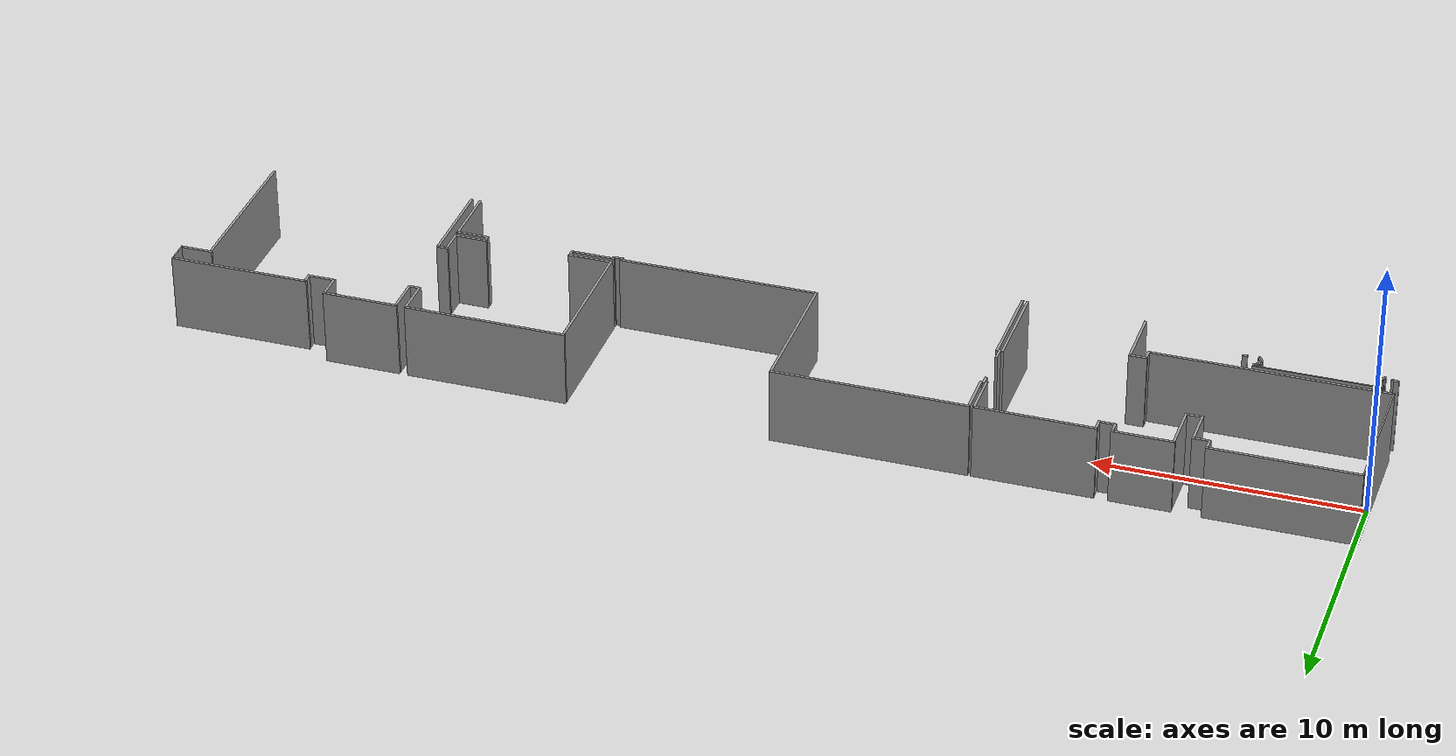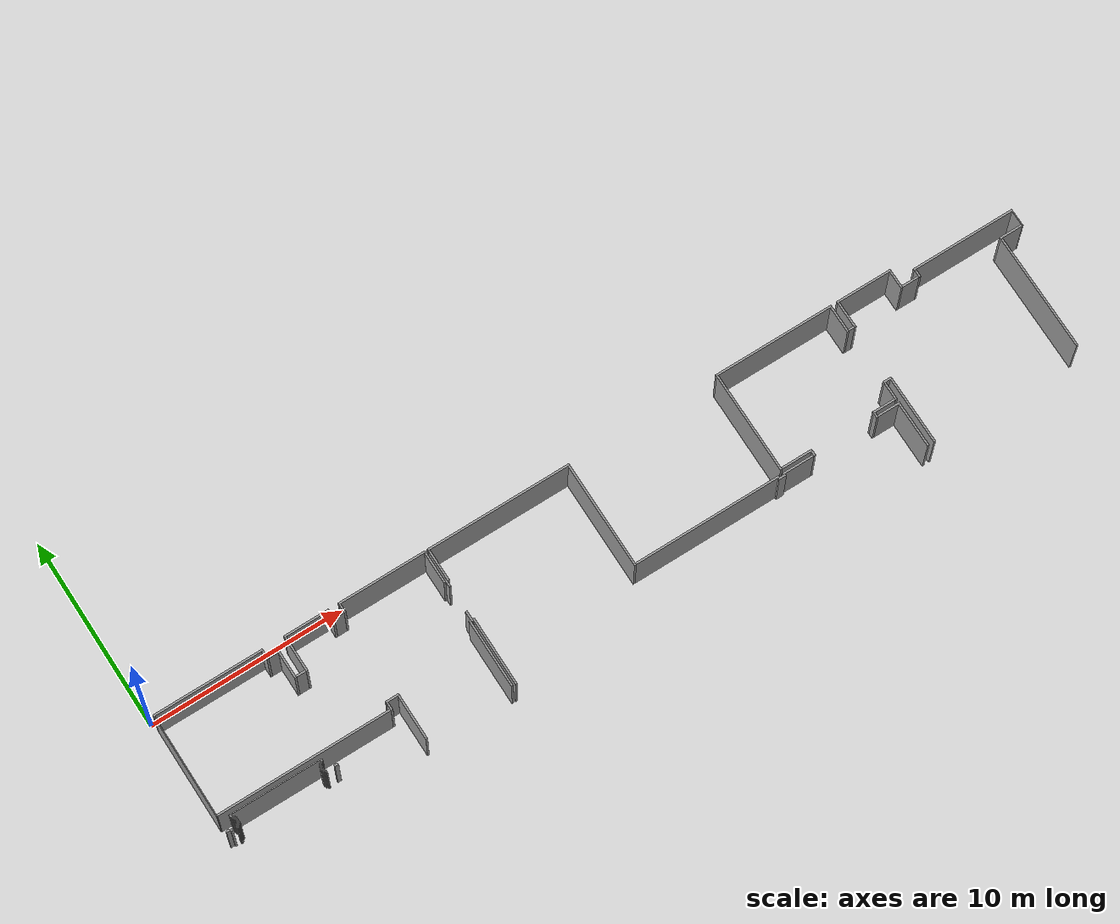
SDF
<sdf version="1.4">
 <model name="RussianRestaurant">
  <static>1</static>
  <link name="Wall_0">
   <collision name="Wall_0_Collision">
    <geometry><box><size>5.70000 0.10000 3.00000</size></box></geometry>
    <pose>3.05000 -0.05000 0 0 0 0.00000</pose>
   </collision>
   <visual name="Wall_0_Visual">
    <geometry><box><size>5.70000 0.10000 3.00000</size></box></geometry>
    <material>
     <script><uri>file://media/materials/scripts/gazebo.material</uri><name>Gazebo/Grey</name></script>
    </material>
    <pose>3.05000 -0.05000 0 0 0 0.00000</pose>
   </visual>
  </link>
  <link name="Wall_1">
   <collision name="Wall_1_Collision">
    <geometry><box><size>2.35000 0.10000 3.00000</size></box></geometry>
    <pose>8.17500 -0.05000 0 0 0 0.00000</pose>
   </collision>
   <visual name="Wall_1_Visual">
    <geometry><box><size>2.35000 0.10000 3.00000</size></box></geometry>
    <material>
     <script><uri>file://media/materials/scripts/gazebo.material</uri><name>Gazebo/Grey</name></script>
    </material>
    <pose>8.17500 -0.05000 0 0 0 0.00000</pose>
   </visual>
  </link>
  <link name="Wall_2">
   <collision name="Wall_2_Collision">
    <geometry><box><size>4.60000 0.10000 3.00000</size></box></geometry>
    <pose>12.15000 -0.05000 0 0 0 0.00000</pose>
   </collision>
   <visual name="Wall_2_Visual">
    <geometry><box><size>4.60000 0.10000 3.00000</size></box></geometry>
    <material>
     <script><uri>file://media/materials/scripts/gazebo.material</uri><name>Gazebo/Grey</name></script>
    </material>
    <pose>12.15000 -0.05000 0 0 0 0.00000</pose>
   </visual>
  </link>
  <link name="Wall_3">
   <collision name="Wall_3_Collision">
    <geometry><box><size>7.55000 0.10000 3.00000</size></box></geometry>
    <pose>18.32500 -0.05000 0 0 0 0.00000</pose>
   </collision>
   <visual name="Wall_3_Visual">
    <geometry><box><size>7.55000 0.10000 3.00000</size></box></geometry>
    <material>
     <script><uri>file://media/materials/scripts/gazebo.material</uri><name>Gazebo/Grey</name></script>
    </material>
    <pose>18.32500 -0.05000 0 0 0 0.00000</pose>
   </visual>
  </link>
  <link name="Wall_4">
   <collision name="Wall_4_Collision">
    <geometry><box><size>6.30000 0.10000 3.00000</size></box></geometry>
    <pose>33.15000 -0.05000 0 0 0 0.00000</pose>
   </collision>
   <visual name="Wall_4_Visual">
    <geometry><box><size>6.30000 0.10000 3.00000</size></box></geometry>
    <material>
     <script><uri>file://media/materials/scripts/gazebo.material</uri><name>Gazebo/Grey</name></script>
    </material>
    <pose>33.15000 -0.05000 0 0 0 0.00000</pose>
   </visual>
  </link>
  <link name="Wall_5">
   <collision name="Wall_5_Collision">
    <geometry><box><size>2.95000 0.10000 3.00000</size></box></geometry>
    <pose>38.07500 -0.05000 0 0 0 0.00000</pose>
   </collision>
   <visual name="Wall_5_Visual">
    <geometry><box><size>2.95000 0.10000 3.00000</size></box></geometry>
    <material>
     <script><uri>file://media/materials/scripts/gazebo.material</uri><name>Gazebo/Grey</name></script>
    </material>
    <pose>38.07500 -0.05000 0 0 0 0.00000</pose>
   </visual>
  </link>
  <link name="Wall_6">
   <collision name="Wall_6_Collision">
    <geometry><box><size>0.05000 5.40000 3.00000</size></box></geometry>
    <pose>0.22500 -2.80000 0 0 0 0.00000</pose>
   </collision>
   <visual name="Wall_6_Visual">
    <geometry><box><size>0.05000 5.40000 3.00000</size></box></geometry>
    <material>
     <script><uri>file://media/materials/scripts/gazebo.material</uri><name>Gazebo/Grey</name></script>
    </material>
    <pose>0.22500 -2.80000 0 0 0 0.00000</pose>
   </visual>
  </link>
  <link name="Wall_7">
   <collision name="Wall_7_Collision">
    <geometry><box><size>0.10000 0.45000 3.00000</size></box></geometry>
    <pose>5.85000 -0.32500 0 0 0 0.00000</pose>
   </collision>
   <visual name="Wall_7_Visual">
    <geometry><box><size>0.10000 0.45000 3.00000</size></box></geometry>
    <material>
     <script><uri>file://media/materials/scripts/gazebo.material</uri><name>Gazebo/Grey</name></script>
    </material>
    <pose>5.85000 -0.32500 0 0 0 0.00000</pose>
   </visual>
  </link>
  <link name="Wall_8">
   <collision name="Wall_8_Collision">
    <geometry><box><size>0.10000 1.85000 3.00000</size></box></geometry>
    <pose>7.05000 -1.02500 0 0 0 0.00000</pose>
   </collision>
   <visual name="Wall_8_Visual">
    <geometry><box><size>0.10000 1.85000 3.00000</size></box></geometry>
    <material>
     <script><uri>file://media/materials/scripts/gazebo.material</uri><name>Gazebo/Grey</name></script>
    </material>
    <pose>7.05000 -1.02500 0 0 0 0.00000</pose>
   </visual>
  </link>
  <link name="Wall_9">
   <collision name="Wall_9_Collision">
    <geometry><box><size>0.10000 0.45000 3.00000</size></box></geometry>
    <pose>9.30000 -0.32500 0 0 0 0.00000</pose>
   </collision>
   <visual name="Wall_9_Visual">
    <geometry><box><size>0.10000 0.45000 3.00000</size></box></geometry>
    <material>
     <script><uri>file://media/materials/scripts/gazebo.material</uri><name>Gazebo/Grey</name></script>
    </material>
    <pose>9.30000 -0.32500 0 0 0 0.00000</pose>
   </visual>
  </link>
  <link name="Wall_10">
   <collision name="Wall_10_Collision">
    <geometry><box><size>0.10000 0.45000 3.00000</size></box></geometry>
    <pose>9.90000 -0.32500 0 0 0 0.00000</pose>
   </collision>
   <visual name="Wall_10_Visual">
    <geometry><box><size>0.10000 0.45000 3.00000</size></box></geometry>
    <material>
     <script><uri>file://media/materials/scripts/gazebo.material</uri><name>Gazebo/Grey</name></script>
    </material>
    <pose>9.90000 -0.32500 0 0 0 0.00000</pose>
   </visual>
  </link>
  <link name="Wall_11">
   <collision name="Wall_11_Collision">
    <geometry><box><size>0.10000 1.65000 3.00000</size></box></geometry>
    <pose>14.40000 -0.92500 0 0 0 0.00000</pose>
   </collision>
   <visual name="Wall_11_Visual">
    <geometry><box><size>0.10000 1.65000 3.00000</size></box></geometry>
    <material>
     <script><uri>file://media/materials/scripts/gazebo.material</uri><name>Gazebo/Grey</name></script>
    </material>
    <pose>14.40000 -0.92500 0 0 0 0.00000</pose>
   </visual>
  </link>
  <link name="Wall_12">
   <collision name="Wall_12_Collision">
    <geometry><box><size>0.10000 1.65000 3.00000</size></box></geometry>
    <pose>14.60000 -0.92500 0 0 0 0.00000</pose>
   </collision>
   <visual name="Wall_12_Visual">
    <geometry><box><size>0.10000 1.65000 3.00000</size></box></geometry>
    <material>
     <script><uri>file://media/materials/scripts/gazebo.material</uri><name>Gazebo/Grey</name></script>
    </material>
    <pose>14.60000 -0.92500 0 0 0 0.00000</pose>
   </visual>
  </link>
  <link name="Wall_13">
   <collision name="Wall_13_Collision">
    <geometry><box><size>0.10000 5.55000 3.00000</size></box></geometry>
    <pose>22.05000 -2.87500 0 0 0 0.00000</pose>
   </collision>
   <visual name="Wall_13_Visual">
    <geometry><box><size>0.10000 5.55000 3.00000</size></box></geometry>
    <material>
     <script><uri>file://media/materials/scripts/gazebo.material</uri><name>Gazebo/Grey</name></script>
    </material>
    <pose>22.05000 -2.87500 0 0 0 0.00000</pose>
   </visual>
  </link>
  <link name="Wall_14">
   <collision name="Wall_14_Collision">
    <geometry><box><size>0.10000 5.30000 3.00000</size></box></geometry>
    <pose>30.05000 -2.75000 0 0 0 0.00000</pose>
   </collision>
   <visual name="Wall_14_Visual">
    <geometry><box><size>0.10000 5.30000 3.00000</size></box></geometry>
    <material>
     <script><uri>file://media/materials/scripts/gazebo.material</uri><name>Gazebo/Grey</name></script>
    </material>
    <pose>30.05000 -2.75000 0 0 0 0.00000</pose>
   </visual>
  </link>
  <link name="Wall_15">
   <collision name="Wall_15_Collision">
    <geometry><box><size>0.10000 1.40000 3.00000</size></box></geometry>
    <pose>36.25000 -0.80000 0 0 0 0.00000</pose>
   </collision>
   <visual name="Wall_15_Visual">
    <geometry><box><size>0.10000 1.40000 3.00000</size></box></geometry>
    <material>
     <script><uri>file://media/materials/scripts/gazebo.material</uri><name>Gazebo/Grey</name></script>
    </material>
    <pose>36.25000 -0.80000 0 0 0 0.00000</pose>
   </visual>
  </link>
  <link name="Wall_16">
   <collision name="Wall_16_Collision">
    <geometry><box><size>0.10000 1.40000 3.00000</size></box></geometry>
    <pose>36.65000 -0.80000 0 0 0 0.00000</pose>
   </collision>
   <visual name="Wall_16_Visual">
    <geometry><box><size>0.10000 1.40000 3.00000</size></box></geometry>
    <material>
     <script><uri>file://media/materials/scripts/gazebo.material</uri><name>Gazebo/Grey</name></script>
    </material>
    <pose>36.65000 -0.80000 0 0 0 0.00000</pose>
   </visual>
  </link>
  <link name="Wall_17">
   <collision name="Wall_17_Collision">
    <geometry><box><size>0.10000 0.95000 3.00000</size></box></geometry>
    <pose>39.50000 -0.57500 0 0 0 0.00000</pose>
   </collision>
   <visual name="Wall_17_Visual">
    <geometry><box><size>0.10000 0.95000 3.00000</size></box></geometry>
    <material>
     <script><uri>file://media/materials/scripts/gazebo.material</uri><name>Gazebo/Grey</name></script>
    </material>
    <pose>39.50000 -0.57500 0 0 0 0.00000</pose>
   </visual>
  </link>
  <link name="Wall_18">
   <collision name="Wall_18_Collision">
    <geometry><box><size>0.60000 0.10000 3.00000</size></box></geometry>
    <pose>6.20000 -0.50000 0 0 0 0.00000</pose>
   </collision>
   <visual name="Wall_18_Visual">
    <geometry><box><size>0.60000 0.10000 3.00000</size></box></geometry>
    <material>
     <script><uri>file://media/materials/scripts/gazebo.material</uri><name>Gazebo/Grey</name></script>
    </material>
    <pose>6.20000 -0.50000 0 0 0 0.00000</pose>
   </visual>
  </link>
  <link name="Wall_19">
   <collision name="Wall_19_Collision">
    <geometry><box><size>0.50000 0.10000 3.00000</size></box></geometry>
    <pose>9.60000 -0.50000 0 0 0 0.00000</pose>
   </collision>
   <visual name="Wall_19_Visual">
    <geometry><box><size>0.50000 0.10000 3.00000</size></box></geometry>
    <material>
     <script><uri>file://media/materials/scripts/gazebo.material</uri><name>Gazebo/Grey</name></script>
    </material>
    <pose>9.60000 -0.50000 0 0 0 0.00000</pose>
   </visual>
  </link>
  <link name="Wall_20">
   <collision name="Wall_20_Collision">
    <geometry><box><size>0.10000 1.40000 3.00000</size></box></geometry>
    <pose>6.45000 -1.25000 0 0 0 0.00000</pose>
   </collision>
   <visual name="Wall_20_Visual">
    <geometry><box><size>0.10000 1.40000 3.00000</size></box></geometry>
    <material>
     <script><uri>file://media/materials/scripts/gazebo.material</uri><name>Gazebo/Grey</name></script>
    </material>
    <pose>6.45000 -1.25000 0 0 0 0.00000</pose>
   </visual>
  </link>
  <link name="Wall_21">
   <collision name="Wall_21_Collision">
    <geometry><box><size>5.45000 0.10000 3.00000</size></box></geometry>
    <pose>43.17500 -0.60000 0 0 0 0.00000</pose>
   </collision>
   <visual name="Wall_21_Visual">
    <geometry><box><size>5.45000 0.10000 3.00000</size></box></geometry>
    <material>
     <script><uri>file://media/materials/scripts/gazebo.material</uri><name>Gazebo/Grey</name></script>
    </material>
    <pose>43.17500 -0.60000 0 0 0 0.00000</pose>
   </visual>
  </link>
  <link name="Wall_22">
   <collision name="Wall_22_Collision">
    <geometry><box><size>0.10000 0.40000 3.00000</size></box></geometry>
    <pose>40.50000 -0.85000 0 0 0 0.00000</pose>
   </collision>
   <visual name="Wall_22_Visual">
    <geometry><box><size>0.10000 0.40000 3.00000</size></box></geometry>
    <material>
     <script><uri>file://media/materials/scripts/gazebo.material</uri><name>Gazebo/Grey</name></script>
    </material>
    <pose>40.50000 -0.85000 0 0 0 0.00000</pose>
   </visual>
  </link>
  <link name="Wall_23">
   <collision name="Wall_23_Collision">
    <geometry><box><size>0.05000 0.85000 3.00000</size></box></geometry>
    <pose>45.87500 -1.07500 0 0 0 0.00000</pose>
   </collision>
   <visual name="Wall_23_Visual">
    <geometry><box><size>0.05000 0.85000 3.00000</size></box></geometry>
    <material>
     <script><uri>file://media/materials/scripts/gazebo.material</uri><name>Gazebo/Grey</name></script>
    </material>
    <pose>45.87500 -1.07500 0 0 0 0.00000</pose>
   </visual>
  </link>
  <link name="Wall_24">
   <collision name="Wall_24_Collision">
    <geometry><box><size>0.90000 0.10000 3.00000</size></box></geometry>
    <pose>40.00000 -1.00000 0 0 0 0.00000</pose>
   </collision>
   <visual name="Wall_24_Visual">
    <geometry><box><size>0.90000 0.10000 3.00000</size></box></geometry>
    <material>
     <script><uri>file://media/materials/scripts/gazebo.material</uri><name>Gazebo/Grey</name></script>
    </material>
    <pose>40.00000 -1.00000 0 0 0 0.00000</pose>
   </visual>
  </link>
  <link name="Wall_25">
   <collision name="Wall_25_Collision">
    <geometry><box><size>0.30000 0.10000 3.00000</size></box></geometry>
    <pose>36.45000 -1.45000 0 0 0 0.00000</pose>
   </collision>
   <visual name="Wall_25_Visual">
    <geometry><box><size>0.30000 0.10000 3.00000</size></box></geometry>
    <material>
     <script><uri>file://media/materials/scripts/gazebo.material</uri><name>Gazebo/Grey</name></script>
    </material>
    <pose>36.45000 -1.45000 0 0 0 0.00000</pose>
   </visual>
  </link>
  <link name="Wall_26">
   <collision name="Wall_26_Collision">
    <geometry><box><size>1.20000 0.10000 3.00000</size></box></geometry>
    <pose>45.25000 -1.45000 0 0 0 0.00000</pose>
   </collision>
   <visual name="Wall_26_Visual">
    <geometry><box><size>1.20000 0.10000 3.00000</size></box></geometry>
    <material>
     <script><uri>file://media/materials/scripts/gazebo.material</uri><name>Gazebo/Grey</name></script>
    </material>
    <pose>45.25000 -1.45000 0 0 0 0.00000</pose>
   </visual>
  </link>
  <link name="Wall_27">
   <collision name="Wall_27_Collision">
    <geometry><box><size>0.10000 6.15000 3.00000</size></box></geometry>
    <pose>44.70000 -4.57500 0 0 0 0.00000</pose>
   </collision>
   <visual name="Wall_27_Visual">
    <geometry><box><size>0.10000 6.15000 3.00000</size></box></geometry>
    <material>
     <script><uri>file://media/materials/scripts/gazebo.material</uri><name>Gazebo/Grey</name></script>
    </material>
    <pose>44.70000 -4.57500 0 0 0 0.00000</pose>
   </visual>
  </link>
  <link name="Wall_28">
   <collision name="Wall_28_Collision">
    <geometry><box><size>0.10000 0.40000 3.00000</size></box></geometry>
    <pose>14.50000 -1.85000 0 0 0 0.00000</pose>
   </collision>
   <visual name="Wall_28_Visual">
    <geometry><box><size>0.10000 0.40000 3.00000</size></box></geometry>
    <material>
     <script><uri>file://media/materials/scripts/gazebo.material</uri><name>Gazebo/Grey</name></script>
    </material>
    <pose>14.50000 -1.85000 0 0 0 0.00000</pose>
   </visual>
  </link>
  <link name="Wall_29">
   <collision name="Wall_29_Collision">
    <geometry><box><size>0.50000 0.10000 3.00000</size></box></geometry>
    <pose>6.75000 -1.90000 0 0 0 0.00000</pose>
   </collision>
   <visual name="Wall_29_Visual">
    <geometry><box><size>0.50000 0.10000 3.00000</size></box></geometry>
    <material>
     <script><uri>file://media/materials/scripts/gazebo.material</uri><name>Gazebo/Grey</name></script>
    </material>
    <pose>6.75000 -1.90000 0 0 0 0.00000</pose>
   </visual>
  </link>
  <link name="Wall_30">
   <collision name="Wall_30_Collision">
    <geometry><box><size>0.10000 0.55000 3.00000</size></box></geometry>
    <pose>14.50000 -3.67500 0 0 0 0.00000</pose>
   </collision>
   <visual name="Wall_30_Visual">
    <geometry><box><size>0.10000 0.55000 3.00000</size></box></geometry>
    <material>
     <script><uri>file://media/materials/scripts/gazebo.material</uri><name>Gazebo/Grey</name></script>
    </material>
    <pose>14.50000 -3.67500 0 0 0 0.00000</pose>
   </visual>
  </link>
  <link name="Wall_31">
   <collision name="Wall_31_Collision">
    <geometry><box><size>0.10000 3.60000 3.00000</size></box></geometry>
    <pose>14.40000 -5.65000 0 0 0 0.00000</pose>
   </collision>
   <visual name="Wall_31_Visual">
    <geometry><box><size>0.10000 3.60000 3.00000</size></box></geometry>
    <material>
     <script><uri>file://media/materials/scripts/gazebo.material</uri><name>Gazebo/Grey</name></script>
    </material>
    <pose>14.40000 -5.65000 0 0 0 0.00000</pose>
   </visual>
  </link>
  <link name="Wall_32">
   <collision name="Wall_32_Collision">
    <geometry><box><size>0.10000 3.60000 3.00000</size></box></geometry>
    <pose>14.60000 -5.65000 0 0 0 0.00000</pose>
   </collision>
   <visual name="Wall_32_Visual">
    <geometry><box><size>0.10000 3.60000 3.00000</size></box></geometry>
    <material>
     <script><uri>file://media/materials/scripts/gazebo.material</uri><name>Gazebo/Grey</name></script>
    </material>
    <pose>14.60000 -5.65000 0 0 0 0.00000</pose>
   </visual>
  </link>
  <link name="Wall_33">
   <collision name="Wall_33_Collision">
    <geometry><box><size>0.45000 0.10000 3.00000</size></box></geometry>
    <pose>36.47500 -4.40000 0 0 0 0.00000</pose>
   </collision>
   <visual name="Wall_33_Visual">
    <geometry><box><size>0.45000 0.10000 3.00000</size></box></geometry>
    <material>
     <script><uri>file://media/materials/scripts/gazebo.material</uri><name>Gazebo/Grey</name></script>
    </material>
    <pose>36.47500 -4.40000 0 0 0 0.00000</pose>
   </visual>
  </link>
  <link name="Wall_34">
   <collision name="Wall_34_Collision">
    <geometry><box><size>0.10000 0.95000 3.00000</size></box></geometry>
    <pose>36.30000 -4.92500 0 0 0 0.00000</pose>
   </collision>
   <visual name="Wall_34_Visual">
    <geometry><box><size>0.10000 0.95000 3.00000</size></box></geometry>
    <material>
     <script><uri>file://media/materials/scripts/gazebo.material</uri><name>Gazebo/Grey</name></script>
    </material>
    <pose>36.30000 -4.92500 0 0 0 0.00000</pose>
   </visual>
  </link>
  <link name="Wall_35">
   <collision name="Wall_35_Collision">
    <geometry><box><size>0.10000 3.55000 3.00000</size></box></geometry>
    <pose>36.65000 -6.22500 0 0 0 0.00000</pose>
   </collision>
   <visual name="Wall_35_Visual">
    <geometry><box><size>0.10000 3.55000 3.00000</size></box></geometry>
    <material>
     <script><uri>file://media/materials/scripts/gazebo.material</uri><name>Gazebo/Grey</name></script>
    </material>
    <pose>36.65000 -6.22500 0 0 0 0.00000</pose>
   </visual>
  </link>
  <link name="Wall_36">
   <collision name="Wall_36_Collision">
    <geometry><box><size>0.70000 0.10000 3.00000</size></box></geometry>
    <pose>9.60000 -5.05000 0 0 0 0.00000</pose>
   </collision>
   <visual name="Wall_36_Visual">
    <geometry><box><size>0.70000 0.10000 3.00000</size></box></geometry>
    <material>
     <script><uri>file://media/materials/scripts/gazebo.material</uri><name>Gazebo/Grey</name></script>
    </material>
    <pose>9.60000 -5.05000 0 0 0 0.00000</pose>
   </visual>
  </link>
  <link name="Wall_37">
   <collision name="Wall_37_Collision">
    <geometry><box><size>0.10000 0.40000 3.00000</size></box></geometry>
    <pose>9.30000 -5.30000 0 0 0 0.00000</pose>
   </collision>
   <visual name="Wall_37_Visual">
    <geometry><box><size>0.10000 0.40000 3.00000</size></box></geometry>
    <material>
     <script><uri>file://media/materials/scripts/gazebo.material</uri><name>Gazebo/Grey</name></script>
    </material>
    <pose>9.30000 -5.30000 0 0 0 0.00000</pose>
   </visual>
  </link>
  <link name="Wall_38">
   <collision name="Wall_38_Collision">
    <geometry><box><size>0.10000 2.35000 3.00000</size></box></geometry>
    <pose>9.90000 -6.27500 0 0 0 0.00000</pose>
   </collision>
   <visual name="Wall_38_Visual">
    <geometry><box><size>0.10000 2.35000 3.00000</size></box></geometry>
    <material>
     <script><uri>file://media/materials/scripts/gazebo.material</uri><name>Gazebo/Grey</name></script>
    </material>
    <pose>9.90000 -6.27500 0 0 0 0.00000</pose>
   </visual>
  </link>
  <link name="Wall_39">
   <collision name="Wall_39_Collision">
    <geometry><box><size>1.65000 0.10000 3.00000</size></box></geometry>
    <pose>30.92500 -5.35000 0 0 0 0.00000</pose>
   </collision>
   <visual name="Wall_39_Visual">
    <geometry><box><size>1.65000 0.10000 3.00000</size></box></geometry>
    <material>
     <script><uri>file://media/materials/scripts/gazebo.material</uri><name>Gazebo/Grey</name></script>
    </material>
    <pose>30.92500 -5.35000 0 0 0 0.00000</pose>
   </visual>
  </link>
  <link name="Wall_40">
   <collision name="Wall_40_Collision">
    <geometry><box><size>1.20000 0.10000 3.00000</size></box></geometry>
    <pose>35.65000 -5.35000 0 0 0 0.00000</pose>
   </collision>
   <visual name="Wall_40_Visual">
    <geometry><box><size>1.20000 0.10000 3.00000</size></box></geometry>
    <material>
     <script><uri>file://media/materials/scripts/gazebo.material</uri><name>Gazebo/Grey</name></script>
    </material>
    <pose>35.65000 -5.35000 0 0 0 0.00000</pose>
   </visual>
  </link>
  <link name="Wall_41">
   <collision name="Wall_41_Collision">
    <geometry><box><size>9.00000 0.10000 3.00000</size></box></geometry>
    <pose>4.75000 -5.45000 0 0 0 0.00000</pose>
   </collision>
   <visual name="Wall_41_Visual">
    <geometry><box><size>9.00000 0.10000 3.00000</size></box></geometry>
    <material>
     <script><uri>file://media/materials/scripts/gazebo.material</uri><name>Gazebo/Grey</name></script>
    </material>
    <pose>4.75000 -5.45000 0 0 0 0.00000</pose>
   </visual>
  </link>
  <link name="Wall_42">
   <collision name="Wall_42_Collision">
    <geometry><box><size>0.10000 0.25000 3.00000</size></box></geometry>
    <pose>31.70000 -5.52500 0 0 0 0.00000</pose>
   </collision>
   <visual name="Wall_42_Visual">
    <geometry><box><size>0.10000 0.25000 3.00000</size></box></geometry>
    <material>
     <script><uri>file://media/materials/scripts/gazebo.material</uri><name>Gazebo/Grey</name></script>
    </material>
    <pose>31.70000 -5.52500 0 0 0 0.00000</pose>
   </visual>
  </link>
  <link name="Wall_43">
   <collision name="Wall_43_Collision">
    <geometry><box><size>0.10000 0.25000 3.00000</size></box></geometry>
    <pose>35.10000 -5.52500 0 0 0 0.00000</pose>
   </collision>
   <visual name="Wall_43_Visual">
    <geometry><box><size>0.10000 0.25000 3.00000</size></box></geometry>
    <material>
     <script><uri>file://media/materials/scripts/gazebo.material</uri><name>Gazebo/Grey</name></script>
    </material>
    <pose>35.10000 -5.52500 0 0 0 0.00000</pose>
   </visual>
  </link>
  <link name="Wall_44">
   <collision name="Wall_44_Collision">
    <geometry><box><size>7.70000 0.10000 3.00000</size></box></geometry>
    <pose>25.95000 -5.60000 0 0 0 0.00000</pose>
   </collision>
   <visual name="Wall_44_Visual">
    <geometry><box><size>7.70000 0.10000 3.00000</size></box></geometry>
    <material>
     <script><uri>file://media/materials/scripts/gazebo.material</uri><name>Gazebo/Grey</name></script>
    </material>
    <pose>25.95000 -5.60000 0 0 0 0.00000</pose>
   </visual>
  </link>
  <link name="Wall_45">
   <collision name="Wall_45_Collision">
    <geometry><box><size>1.65000 0.10000 3.00000</size></box></geometry>
    <pose>30.82500 -5.60000 0 0 0 0.00000</pose>
   </collision>
   <visual name="Wall_45_Visual">
    <geometry><box><size>1.65000 0.10000 3.00000</size></box></geometry>
    <material>
     <script><uri>file://media/materials/scripts/gazebo.material</uri><name>Gazebo/Grey</name></script>
    </material>
    <pose>30.82500 -5.60000 0 0 0 0.00000</pose>
   </visual>
  </link>
  <link name="Wall_46">
   <collision name="Wall_46_Collision">
    <geometry><box><size>1.20000 0.10000 3.00000</size></box></geometry>
    <pose>35.75000 -5.60000 0 0 0 0.00000</pose>
   </collision>
   <visual name="Wall_46_Visual">
    <geometry><box><size>1.20000 0.10000 3.00000</size></box></geometry>
    <material>
     <script><uri>file://media/materials/scripts/gazebo.material</uri><name>Gazebo/Grey</name></script>
    </material>
    <pose>35.75000 -5.60000 0 0 0 0.00000</pose>
   </visual>
  </link>
  <link name="Wall_47">
   <collision name="Wall_47_Collision">
    <geometry><box><size>0.40000 0.10000 3.00000</size></box></geometry>
    <pose>29.90000 -5.70000 0 0 0 0.00000</pose>
   </collision>
   <visual name="Wall_47_Visual">
    <geometry><box><size>0.40000 0.10000 3.00000</size></box></geometry>
    <material>
     <script><uri>file://media/materials/scripts/gazebo.material</uri><name>Gazebo/Grey</name></script>
    </material>
    <pose>29.90000 -5.70000 0 0 0 0.00000</pose>
   </visual>
  </link>
  <link name="Wall_48">
   <collision name="Wall_48_Collision">
    <geometry><box><size>0.10000 2.35000 3.00000</size></box></geometry>
    <pose>36.30000 -6.82500 0 0 0 0.00000</pose>
   </collision>
   <visual name="Wall_48_Visual">
    <geometry><box><size>0.10000 2.35000 3.00000</size></box></geometry>
    <material>
     <script><uri>file://media/materials/scripts/gazebo.material</uri><name>Gazebo/Grey</name></script>
    </material>
    <pose>36.30000 -6.82500 0 0 0 0.00000</pose>
   </visual>
  </link>
  <link name="Wall_49">
   <collision name="Wall_49_Collision">
    <geometry><box><size>4.80000 0.05000 3.00000</size></box></geometry>
    <pose>3.10000 -5.72500 0 0 0 0.00000</pose>
   </collision>
   <visual name="Wall_49_Visual">
    <geometry><box><size>4.80000 0.05000 3.00000</size></box></geometry>
    <material>
     <script><uri>file://media/materials/scripts/gazebo.material</uri><name>Gazebo/Grey</name></script>
    </material>
    <pose>3.10000 -5.72500 0 0 0 0.00000</pose>
   </visual>
  </link>
  <link name="Wall_50">
   <collision name="Wall_50_Collision">
    <geometry><box><size>0.10000 0.10000 3.00000</size></box></geometry>
    <pose>0.75000 -5.80000 0 0 0 0.00000</pose>
   </collision>
   <visual name="Wall_50_Visual">
    <geometry><box><size>0.10000 0.10000 3.00000</size></box></geometry>
    <material>
     <script><uri>file://media/materials/scripts/gazebo.material</uri><name>Gazebo/Grey</name></script>
    </material>
    <pose>0.75000 -5.80000 0 0 0 0.00000</pose>
   </visual>
  </link>
  <link name="Wall_51">
   <collision name="Wall_51_Collision">
    <geometry><box><size>0.10000 0.10000 3.00000</size></box></geometry>
    <pose>5.45000 -5.80000 0 0 0 0.00000</pose>
   </collision>
   <visual name="Wall_51_Visual">
    <geometry><box><size>0.10000 0.10000 3.00000</size></box></geometry>
    <material>
     <script><uri>file://media/materials/scripts/gazebo.material</uri><name>Gazebo/Grey</name></script>
    </material>
    <pose>5.45000 -5.80000 0 0 0 0.00000</pose>
   </visual>
  </link>
  <link name="Wall_52">
   <collision name="Wall_52_Collision">
    <geometry><box><size>0.05000 0.25000 3.00000</size></box></geometry>
    <pose>0.82500 -5.92500 0 0 0 0.00000</pose>
   </collision>
   <visual name="Wall_52_Visual">
    <geometry><box><size>0.05000 0.25000 3.00000</size></box></geometry>
    <material>
     <script><uri>file://media/materials/scripts/gazebo.material</uri><name>Gazebo/Grey</name></script>
    </material>
    <pose>0.82500 -5.92500 0 0 0 0.00000</pose>
   </visual>
  </link>
  <link name="Wall_53">
   <collision name="Wall_53_Collision">
    <geometry><box><size>0.05000 0.15000 3.00000</size></box></geometry>
    <pose>5.37500 -5.87500 0 0 0 0.00000</pose>
   </collision>
   <visual name="Wall_53_Visual">
    <geometry><box><size>0.05000 0.15000 3.00000</size></box></geometry>
    <material>
     <script><uri>file://media/materials/scripts/gazebo.material</uri><name>Gazebo/Grey</name></script>
    </material>
    <pose>5.37500 -5.87500 0 0 0 0.00000</pose>
   </visual>
  </link>
  <link name="Wall_54">
   <collision name="Wall_54_Collision">
    <geometry><box><size>0.05000 0.10000 3.00000</size></box></geometry>
    <pose>0.77500 -5.90000 0 0 0 0.00000</pose>
   </collision>
   <visual name="Wall_54_Visual">
    <geometry><box><size>0.05000 0.10000 3.00000</size></box></geometry>
    <material>
     <script><uri>file://media/materials/scripts/gazebo.material</uri><name>Gazebo/Grey</name></script>
    </material>
    <pose>0.77500 -5.90000 0 0 0 0.00000</pose>
   </visual>
  </link>
  <link name="Wall_55">
   <collision name="Wall_55_Collision">
    <geometry><box><size>0.05000 0.50000 3.00000</size></box></geometry>
    <pose>0.87500 -6.10000 0 0 0 0.00000</pose>
   </collision>
   <visual name="Wall_55_Visual">
    <geometry><box><size>0.05000 0.50000 3.00000</size></box></geometry>
    <material>
     <script><uri>file://media/materials/scripts/gazebo.material</uri><name>Gazebo/Grey</name></script>
    </material>
    <pose>0.87500 -6.10000 0 0 0 0.00000</pose>
   </visual>
  </link>
  <link name="Wall_56">
   <collision name="Wall_56_Collision">
    <geometry><box><size>0.05000 0.25000 3.00000</size></box></geometry>
    <pose>5.32500 -5.97500 0 0 0 0.00000</pose>
   </collision>
   <visual name="Wall_56_Visual">
    <geometry><box><size>0.05000 0.25000 3.00000</size></box></geometry>
    <material>
     <script><uri>file://media/materials/scripts/gazebo.material</uri><name>Gazebo/Grey</name></script>
    </material>
    <pose>5.32500 -5.97500 0 0 0 0.00000</pose>
   </visual>
  </link>
  <link name="Wall_57">
   <collision name="Wall_57_Collision">
    <geometry><box><size>0.05000 0.05000 3.00000</size></box></geometry>
    <pose>5.42500 -5.87500 0 0 0 0.00000</pose>
   </collision>
   <visual name="Wall_57_Visual">
    <geometry><box><size>0.05000 0.05000 3.00000</size></box></geometry>
    <material>
     <script><uri>file://media/materials/scripts/gazebo.material</uri><name>Gazebo/Grey</name></script>
    </material>
    <pose>5.42500 -5.87500 0 0 0 0.00000</pose>
   </visual>
  </link>
  <link name="Wall_58">
   <collision name="Wall_58_Collision">
    <geometry><box><size>0.05000 0.40000 3.00000</size></box></geometry>
    <pose>5.27500 -6.10000 0 0 0 0.00000</pose>
   </collision>
   <visual name="Wall_58_Visual">
    <geometry><box><size>0.05000 0.40000 3.00000</size></box></geometry>
    <material>
     <script><uri>file://media/materials/scripts/gazebo.material</uri><name>Gazebo/Grey</name></script>
    </material>
    <pose>5.27500 -6.10000 0 0 0 0.00000</pose>
   </visual>
  </link>
  <link name="Wall_59">
   <collision name="Wall_59_Collision">
    <geometry><box><size>0.05000 0.35000 3.00000</size></box></geometry>
    <pose>0.92500 -6.12500 0 0 0 0.00000</pose>
   </collision>
   <visual name="Wall_59_Visual">
    <geometry><box><size>0.05000 0.35000 3.00000</size></box></geometry>
    <material>
     <script><uri>file://media/materials/scripts/gazebo.material</uri><name>Gazebo/Grey</name></script>
    </material>
    <pose>0.92500 -6.12500 0 0 0 0.00000</pose>
   </visual>
  </link>
  <link name="Wall_60">
   <collision name="Wall_60_Collision">
    <geometry><box><size>0.05000 0.15000 3.00000</size></box></geometry>
    <pose>5.22500 -6.12500 0 0 0 0.00000</pose>
   </collision>
   <visual name="Wall_60_Visual">
    <geometry><box><size>0.05000 0.15000 3.00000</size></box></geometry>
    <material>
     <script><uri>file://media/materials/scripts/gazebo.material</uri><name>Gazebo/Grey</name></script>
    </material>
    <pose>5.22500 -6.12500 0 0 0 0.00000</pose>
   </visual>
  </link>
  <link name="Wall_61">
   <collision name="Wall_61_Collision">
    <geometry><box><size>0.05000 0.20000 3.00000</size></box></geometry>
    <pose>5.32500 -6.25000 0 0 0 0.00000</pose>
   </collision>
   <visual name="Wall_61_Visual">
    <geometry><box><size>0.05000 0.20000 3.00000</size></box></geometry>
    <material>
     <script><uri>file://media/materials/scripts/gazebo.material</uri><name>Gazebo/Grey</name></script>
    </material>
    <pose>5.32500 -6.25000 0 0 0 0.00000</pose>
   </visual>
  </link>
  <link name="Wall_62">
   <collision name="Wall_62_Collision">
    <geometry><box><size>0.05000 0.20000 3.00000</size></box></geometry>
    <pose>0.82500 -6.30000 0 0 0 0.00000</pose>
   </collision>
   <visual name="Wall_62_Visual">
    <geometry><box><size>0.05000 0.20000 3.00000</size></box></geometry>
    <material>
     <script><uri>file://media/materials/scripts/gazebo.material</uri><name>Gazebo/Grey</name></script>
    </material>
    <pose>0.82500 -6.30000 0 0 0 0.00000</pose>
   </visual>
  </link>
  <link name="Wall_63">
   <collision name="Wall_63_Collision">
    <geometry><box><size>0.20000 0.10000 3.00000</size></box></geometry>
    <pose>0.30000 -6.30000 0 0 0 0.00000</pose>
   </collision>
   <visual name="Wall_63_Visual">
    <geometry><box><size>0.20000 0.10000 3.00000</size></box></geometry>
    <material>
     <script><uri>file://media/materials/scripts/gazebo.material</uri><name>Gazebo/Grey</name></script>
    </material>
    <pose>0.30000 -6.30000 0 0 0 0.00000</pose>
   </visual>
  </link>
  <link name="Wall_64">
   <collision name="Wall_64_Collision">
    <geometry><box><size>0.05000 0.20000 3.00000</size></box></geometry>
    <pose>0.77500 -6.35000 0 0 0 0.00000</pose>
   </collision>
   <visual name="Wall_64_Visual">
    <geometry><box><size>0.05000 0.20000 3.00000</size></box></geometry>
    <material>
     <script><uri>file://media/materials/scripts/gazebo.material</uri><name>Gazebo/Grey</name></script>
    </material>
    <pose>0.77500 -6.35000 0 0 0 0.00000</pose>
   </visual>
  </link>
  <link name="Wall_65">
   <collision name="Wall_65_Collision">
    <geometry><box><size>0.05000 0.15000 3.00000</size></box></geometry>
    <pose>5.37500 -6.32500 0 0 0 0.00000</pose>
   </collision>
   <visual name="Wall_65_Visual">
    <geometry><box><size>0.05000 0.15000 3.00000</size></box></geometry>
    <material>
     <script><uri>file://media/materials/scripts/gazebo.material</uri><name>Gazebo/Grey</name></script>
    </material>
    <pose>5.37500 -6.32500 0 0 0 0.00000</pose>
   </visual>
  </link>
  <link name="Wall_66">
   <collision name="Wall_66_Collision">
    <geometry><box><size>0.20000 0.10000 3.00000</size></box></geometry>
    <pose>5.90000 -6.30000 0 0 0 0.00000</pose>
   </collision>
   <visual name="Wall_66_Visual">
    <geometry><box><size>0.20000 0.10000 3.00000</size></box></geometry>
    <material>
     <script><uri>file://media/materials/scripts/gazebo.material</uri><name>Gazebo/Grey</name></script>
    </material>
    <pose>5.90000 -6.30000 0 0 0 0.00000</pose>
   </visual>
  </link>
  <link name="Wall_67">
   <collision name="Wall_67_Collision">
    <geometry><box><size>0.10000 0.10000 3.00000</size></box></geometry>
    <pose>0.45000 -6.35000 0 0 0 0.00000</pose>
   </collision>
   <visual name="Wall_67_Visual">
    <geometry><box><size>0.10000 0.10000 3.00000</size></box></geometry>
    <material>
     <script><uri>file://media/materials/scripts/gazebo.material</uri><name>Gazebo/Grey</name></script>
    </material>
    <pose>0.45000 -6.35000 0 0 0 0.00000</pose>
   </visual>
  </link>
  <link name="Wall_68">
   <collision name="Wall_68_Collision">
    <geometry><box><size>0.05000 0.15000 3.00000</size></box></geometry>
    <pose>0.72500 -6.37500 0 0 0 0.00000</pose>
   </collision>
   <visual name="Wall_68_Visual">
    <geometry><box><size>0.05000 0.15000 3.00000</size></box></geometry>
    <material>
     <script><uri>file://media/materials/scripts/gazebo.material</uri><name>Gazebo/Grey</name></script>
    </material>
    <pose>0.72500 -6.37500 0 0 0 0.00000</pose>
   </visual>
  </link>
 </model>
</sdf>
